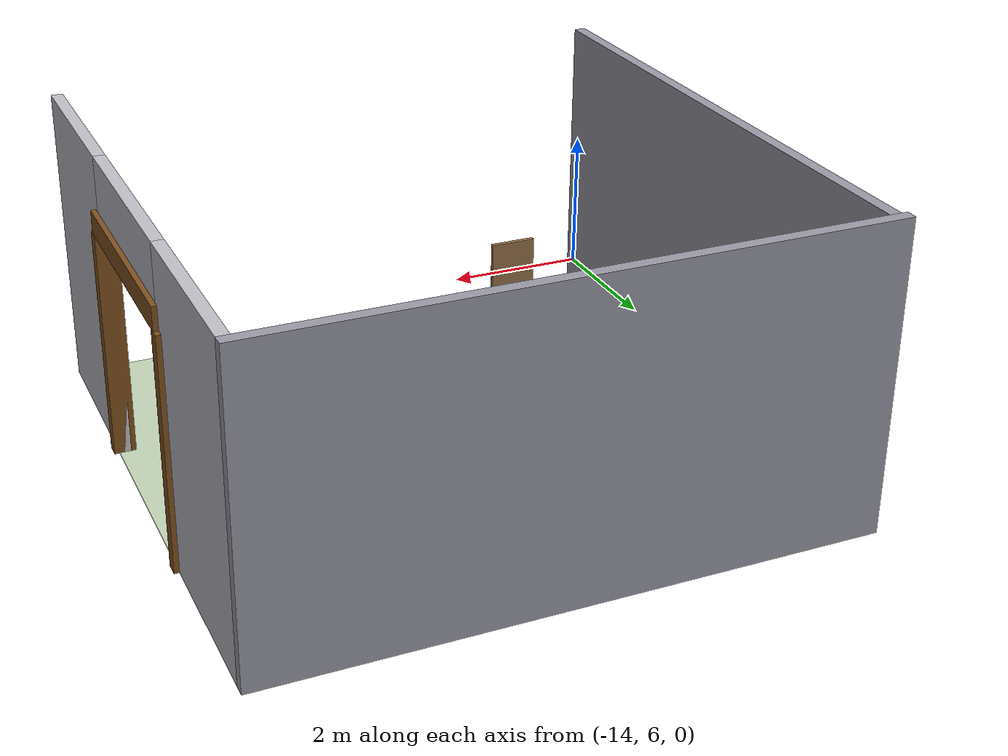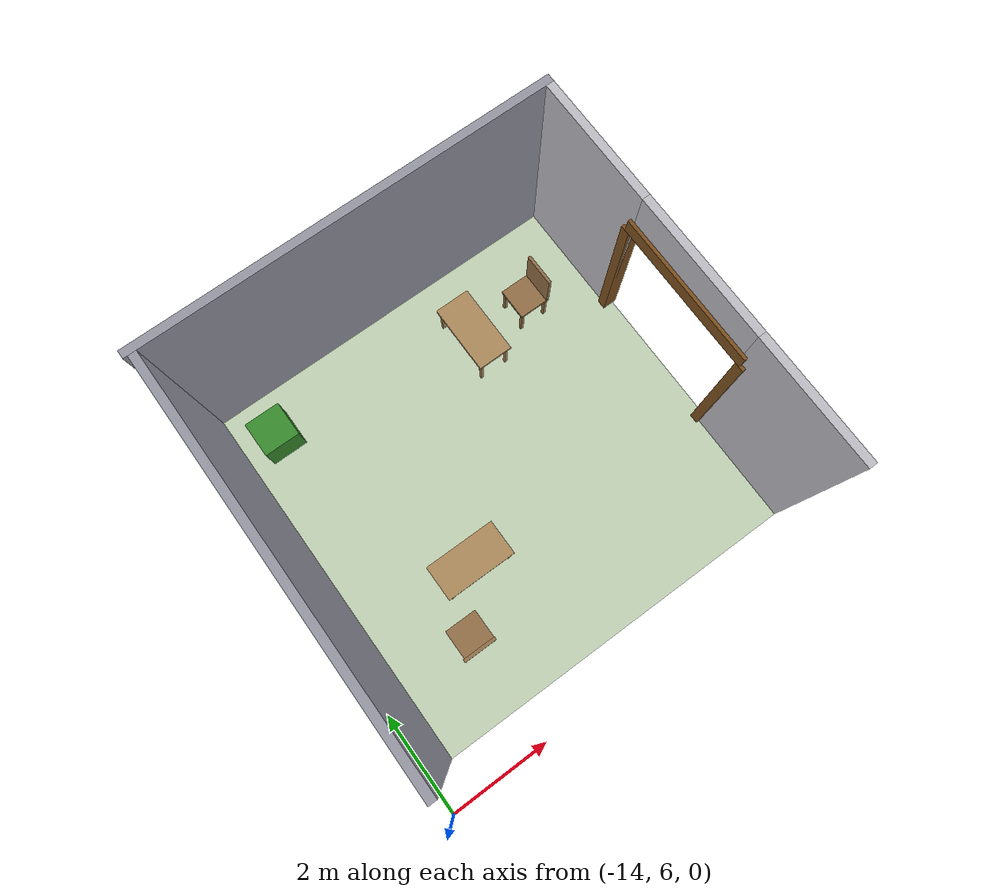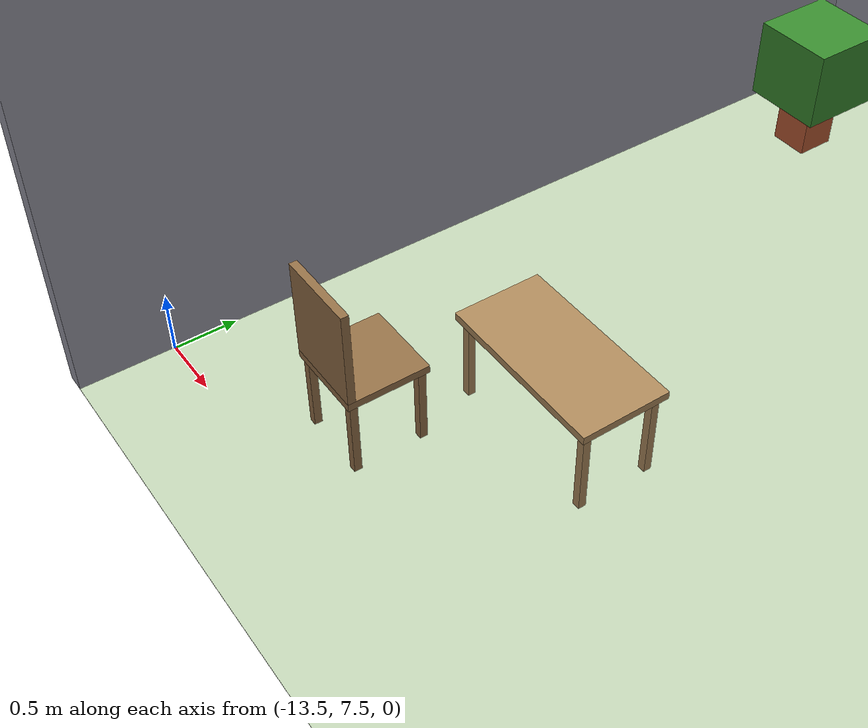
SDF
<?xml version="1.0"?>
<sdf version="1.8">
  <model name="room_d">
    <static>true</static>
    <pose>0 0 0 0 0 0</pose>
    <link name="floor_d">
      <pose>-9.75 10.5 0.002 0 0 0</pose>
      <visual name="vis">
        <geometry><box><size>7.5 7.5 0.004</size></box></geometry>
        <material><ambient>0.76 0.83 0.71 1</ambient><diffuse>0.76 0.83 0.71 1</diffuse></material>
      </visual>
    </link>
    <link name="wall_d_w">
      <pose>-13.575 10.5 2.0 0 0 0</pose>
      <collision name="col"><geometry><box><size>0.15 7.5 4.0</size></box></geometry></collision>
      <visual name="vis">
        <geometry><box><size>0.15 7.5 4.0</size></box></geometry>
        <material><ambient>0.6 0.6 0.65 1</ambient><diffuse>0.6 0.6 0.65 1</diffuse></material>
      </visual>
    </link>
    <link name="wall_d_n">
      <pose>-9.8625 14.325 2.0 0 0 0</pose>
      <collision name="col"><geometry><box><size>7.725 0.15 4.0</size></box></geometry></collision>
      <visual name="vis">
        <geometry><box><size>7.725 0.15 4.0</size></box></geometry>
        <material><ambient>0.6 0.6 0.65 1</ambient><diffuse>0.6 0.6 0.65 1</diffuse></material>
      </visual>
    </link>
    <link name="wall_d_e_bot">
      <pose>-6.075 7.95 2.0 0 0 0</pose>
      <collision name="col"><geometry><box><size>0.15 2.4000000000000004 4.0</size></box></geometry></collision>
      <visual name="vis">
        <geometry><box><size>0.15 2.4000000000000004 4.0</size></box></geometry>
        <material><ambient>0.75 0.75 0.78 1</ambient><diffuse>0.75 0.75 0.78 1</diffuse></material>
      </visual>
    </link>
    <link name="wall_d_e_top">
      <pose>-6.075 13.05 2.0 0 0 0</pose>
      <collision name="col"><geometry><box><size>0.15 2.4000000000000004 4.0</size></box></geometry></collision>
      <visual name="vis">
        <geometry><box><size>0.15 2.4000000000000004 4.0</size></box></geometry>
        <material><ambient>0.75 0.75 0.78 1</ambient><diffuse>0.75 0.75 0.78 1</diffuse></material>
      </visual>
    </link>
    <link name="wall_d_e_door_top">
      <pose>-6.075 10.5 3.5 0 0 0</pose>
      <collision name="col"><geometry><box><size>0.15 2.7 1.0</size></box></geometry></collision>
      <visual name="vis">
        <geometry><box><size>0.15 2.7 1.0</size></box></geometry>
        <material><ambient>0.75 0.75 0.78 1</ambient><diffuse>0.75 0.75 0.78 1</diffuse></material>
      </visual>
    </link>
    <link name="frm_dc_l">
      <pose>-6.075 9.06 1.5 0 0 0</pose>
      <visual name="vis">
        <geometry><box><size>0.28 0.18 3.0</size></box></geometry>
        <material><ambient>0.5 0.32 0.12 1</ambient><diffuse>0.5 0.32 0.12 1</diffuse></material>
      </visual>
    </link>
    <link name="frm_dc_r">
      <pose>-6.075 11.94 1.5 0 0 0</pose>
      <visual name="vis">
        <geometry><box><size>0.28 0.18 3.0</size></box></geometry>
        <material><ambient>0.5 0.32 0.12 1</ambient><diffuse>0.5 0.32 0.12 1</diffuse></material>
      </visual>
    </link>
    <link name="frm_dc_t">
      <pose>-6.075 10.5 3.15 0 0 0</pose>
      <visual name="vis">
        <geometry><box><size>0.28 2.8800000000000003 0.3</size></box></geometry>
        <material><ambient>0.5 0.32 0.12 1</ambient><diffuse>0.5 0.32 0.12 1</diffuse></material>
      </visual>
    </link>
    <link name="desk_d1_top">
      <pose>-11.25 9.3 0.72 0 0 0</pose>
      <collision name="col"><geometry><box><size>1.4 0.7 0.06</size></box></geometry></collision>
      <visual name="vis">
        <geometry><box><size>1.4 0.7 0.06</size></box></geometry>
        <material><ambient>0.68 0.54 0.36 1</ambient><diffuse>0.68 0.54 0.36 1</diffuse></material>
      </visual>
    </link>
    <link name="desk_d1_leg0">
      <pose>-11.879999999999999 9.020000000000001 0.345 0 0 0</pose>
      <collision name="col"><geometry><box><size>0.06 0.06 0.69</size></box></geometry></collision>
      <visual name="vis">
        <geometry><box><size>0.06 0.06 0.69</size></box></geometry>
        <material><ambient>0.68 0.54 0.36 1</ambient><diffuse>0.68 0.54 0.36 1</diffuse></material>
      </visual>
    </link>
    <link name="desk_d1_leg1">
      <pose>-11.879999999999999 9.58 0.345 0 0 0</pose>
      <collision name="col"><geometry><box><size>0.06 0.06 0.69</size></box></geometry></collision>
      <visual name="vis">
        <geometry><box><size>0.06 0.06 0.69</size></box></geometry>
        <material><ambient>0.68 0.54 0.36 1</ambient><diffuse>0.68 0.54 0.36 1</diffuse></material>
      </visual>
    </link>
    <link name="desk_d1_leg2">
      <pose>-10.620000000000001 9.020000000000001 0.345 0 0 0</pose>
      <collision name="col"><geometry><box><size>0.06 0.06 0.69</size></box></geometry></collision>
      <visual name="vis">
        <geometry><box><size>0.06 0.06 0.69</size></box></geometry>
        <material><ambient>0.68 0.54 0.36 1</ambient><diffuse>0.68 0.54 0.36 1</diffuse></material>
      </visual>
    </link>
    <link name="desk_d1_leg3">
      <pose>-10.620000000000001 9.58 0.345 0 0 0</pose>
      <collision name="col"><geometry><box><size>0.06 0.06 0.69</size></box></geometry></collision>
      <visual name="vis">
        <geometry><box><size>0.06 0.06 0.69</size></box></geometry>
        <material><ambient>0.68 0.54 0.36 1</ambient><diffuse>0.68 0.54 0.36 1</diffuse></material>
      </visual>
    </link>
    <link name="chair_d1_seat">
      <pose>-12.0 8.25 0.65 0 0 0</pose>
      <collision name="col"><geometry><box><size>0.63 0.63 0.06</size></box></geometry></collision>
      <visual name="vis">
        <geometry><box><size>0.63 0.63 0.06</size></box></geometry>
        <material><ambient>0.58 0.44 0.28 1</ambient><diffuse>0.58 0.44 0.28 1</diffuse></material>
      </visual>
    </link>
    <link name="chair_d1_bk">
      <pose>-12.0 7.965 1.0550000000000002 0 0 0</pose>
      <collision name="col"><geometry><box><size>0.63 0.06 0.75</size></box></geometry></collision>
      <visual name="vis">
        <geometry><box><size>0.63 0.06 0.75</size></box></geometry>
        <material><ambient>0.58 0.44 0.28 1</ambient><diffuse>0.58 0.44 0.28 1</diffuse></material>
      </visual>
    </link>
    <link name="chair_d1_leg0">
      <pose>-12.265 7.985 0.31000000000000005 0 0 0</pose>
      <collision name="col"><geometry><box><size>0.06 0.06 0.6200000000000001</size></box></geometry></collision>
      <visual name="vis">
        <geometry><box><size>0.06 0.06 0.6200000000000001</size></box></geometry>
        <material><ambient>0.58 0.44 0.28 1</ambient><diffuse>0.58 0.44 0.28 1</diffuse></material>
      </visual>
    </link>
    <link name="chair_d1_leg1">
      <pose>-12.265 8.515 0.31000000000000005 0 0 0</pose>
      <collision name="col"><geometry><box><size>0.06 0.06 0.6200000000000001</size></box></geometry></collision>
      <visual name="vis">
        <geometry><box><size>0.06 0.06 0.6200000000000001</size></box></geometry>
        <material><ambient>0.58 0.44 0.28 1</ambient><diffuse>0.58 0.44 0.28 1</diffuse></material>
      </visual>
    </link>
    <link name="chair_d1_leg2">
      <pose>-11.735 7.985 0.31000000000000005 0 0 0</pose>
      <collision name="col"><geometry><box><size>0.06 0.06 0.6200000000000001</size></box></geometry></collision>
      <visual name="vis">
        <geometry><box><size>0.06 0.06 0.6200000000000001</size></box></geometry>
        <material><ambient>0.58 0.44 0.28 1</ambient><diffuse>0.58 0.44 0.28 1</diffuse></material>
      </visual>
    </link>
    <link name="chair_d1_leg3">
      <pose>-11.735 8.515 0.31000000000000005 0 0 0</pose>
      <collision name="col"><geometry><box><size>0.06 0.06 0.6200000000000001</size></box></geometry></collision>
      <visual name="vis">
        <geometry><box><size>0.06 0.06 0.6200000000000001</size></box></geometry>
        <material><ambient>0.58 0.44 0.28 1</ambient><diffuse>0.58 0.44 0.28 1</diffuse></material>
      </visual>
    </link>
    <link name="desk_d2_top">
      <pose>-8.7 12.75 0.72 0 0 0</pose>
      <collision name="col"><geometry><box><size>0.7 1.4 0.06</size></box></geometry></collision>
      <visual name="vis">
        <geometry><box><size>0.7 1.4 0.06</size></box></geometry>
        <material><ambient>0.68 0.54 0.36 1</ambient><diffuse>0.68 0.54 0.36 1</diffuse></material>
      </visual>
    </link>
    <link name="desk_d2_leg0">
      <pose>-8.979999999999999 12.120000000000001 0.345 0 0 0</pose>
      <collision name="col"><geometry><box><size>0.06 0.06 0.69</size></box></geometry></collision>
      <visual name="vis">
        <geometry><box><size>0.06 0.06 0.69</size></box></geometry>
        <material><ambient>0.68 0.54 0.36 1</ambient><diffuse>0.68 0.54 0.36 1</diffuse></material>
      </visual>
    </link>
    <link name="desk_d2_leg1">
      <pose>-8.979999999999999 13.379999999999999 0.345 0 0 0</pose>
      <collision name="col"><geometry><box><size>0.06 0.06 0.69</size></box></geometry></collision>
      <visual name="vis">
        <geometry><box><size>0.06 0.06 0.69</size></box></geometry>
        <material><ambient>0.68 0.54 0.36 1</ambient><diffuse>0.68 0.54 0.36 1</diffuse></material>
      </visual>
    </link>
    <link name="desk_d2_leg2">
      <pose>-8.42 12.120000000000001 0.345 0 0 0</pose>
      <collision name="col"><geometry><box><size>0.06 0.06 0.69</size></box></geometry></collision>
      <visual name="vis">
        <geometry><box><size>0.06 0.06 0.69</size></box></geometry>
        <material><ambient>0.68 0.54 0.36 1</ambient><diffuse>0.68 0.54 0.36 1</diffuse></material>
      </visual>
    </link>
    <link name="desk_d2_leg3">
      <pose>-8.42 13.379999999999999 0.345 0 0 0</pose>
      <collision name="col"><geometry><box><size>0.06 0.06 0.69</size></box></geometry></collision>
      <visual name="vis">
        <geometry><box><size>0.06 0.06 0.69</size></box></geometry>
        <material><ambient>0.68 0.54 0.36 1</ambient><diffuse>0.68 0.54 0.36 1</diffuse></material>
      </visual>
    </link>
    <link name="chair_d2_seat">
      <pose>-7.5 12.75 0.65 0 0 0</pose>
      <collision name="col"><geometry><box><size>0.63 0.63 0.06</size></box></geometry></collision>
      <visual name="vis">
        <geometry><box><size>0.63 0.63 0.06</size></box></geometry>
        <material><ambient>0.58 0.44 0.28 1</ambient><diffuse>0.58 0.44 0.28 1</diffuse></material>
      </visual>
    </link>
    <link name="chair_d2_bk">
      <pose>-7.215 12.75 1.0550000000000002 0 0 0</pose>
      <collision name="col"><geometry><box><size>0.06 0.63 0.75</size></box></geometry></collision>
      <visual name="vis">
        <geometry><box><size>0.06 0.63 0.75</size></box></geometry>
        <material><ambient>0.58 0.44 0.28 1</ambient><diffuse>0.58 0.44 0.28 1</diffuse></material>
      </visual>
    </link>
    <link name="chair_d2_leg0">
      <pose>-7.765 12.485 0.31000000000000005 0 0 0</pose>
      <collision name="col"><geometry><box><size>0.06 0.06 0.6200000000000001</size></box></geometry></collision>
      <visual name="vis">
        <geometry><box><size>0.06 0.06 0.6200000000000001</size></box></geometry>
        <material><ambient>0.58 0.44 0.28 1</ambient><diffuse>0.58 0.44 0.28 1</diffuse></material>
      </visual>
    </link>
    <link name="chair_d2_leg1">
      <pose>-7.765 13.015 0.31000000000000005 0 0 0</pose>
      <collision name="col"><geometry><box><size>0.06 0.06 0.6200000000000001</size></box></geometry></collision>
      <visual name="vis">
        <geometry><box><size>0.06 0.06 0.6200000000000001</size></box></geometry>
        <material><ambient>0.58 0.44 0.28 1</ambient><diffuse>0.58 0.44 0.28 1</diffuse></material>
      </visual>
    </link>
    <link name="chair_d2_leg2">
      <pose>-7.235 12.485 0.31000000000000005 0 0 0</pose>
      <collision name="col"><geometry><box><size>0.06 0.06 0.6200000000000001</size></box></geometry></collision>
      <visual name="vis">
        <geometry><box><size>0.06 0.06 0.6200000000000001</size></box></geometry>
        <material><ambient>0.58 0.44 0.28 1</ambient><diffuse>0.58 0.44 0.28 1</diffuse></material>
      </visual>
    </link>
    <link name="chair_d2_leg3">
      <pose>-7.235 13.015 0.31000000000000005 0 0 0</pose>
      <collision name="col"><geometry><box><size>0.06 0.06 0.6200000000000001</size></box></geometry></collision>
      <visual name="vis">
        <geometry><box><size>0.06 0.06 0.6200000000000001</size></box></geometry>
        <material><ambient>0.58 0.44 0.28 1</ambient><diffuse>0.58 0.44 0.28 1</diffuse></material>
      </visual>
    </link>
    <link name="plant_d_pot">
      <pose>-12.75 13.2 0.225 0 0 0</pose>
      <collision name="col"><geometry><box><size>0.33 0.33 0.45</size></box></geometry></collision>
      <visual name="vis">
        <geometry><box><size>0.33 0.33 0.45</size></box></geometry>
        <material><ambient>0.72 0.35 0.2 1</ambient><diffuse>0.72 0.35 0.2 1</diffuse></material>
      </visual>
    </link>
    <link name="plant_d_leaves">
      <pose>-12.75 13.2 0.78 0 0 0</pose>
      <collision name="col"><geometry><box><size>0.69 0.69 0.66</size></box></geometry></collision>
      <visual name="vis">
        <geometry><box><size>0.69 0.69 0.66</size></box></geometry>
        <material><ambient>0.22 0.55 0.18 1</ambient><diffuse>0.22 0.55 0.18 1</diffuse></material>
      </visual>
    </link>
  </model>
</sdf>
